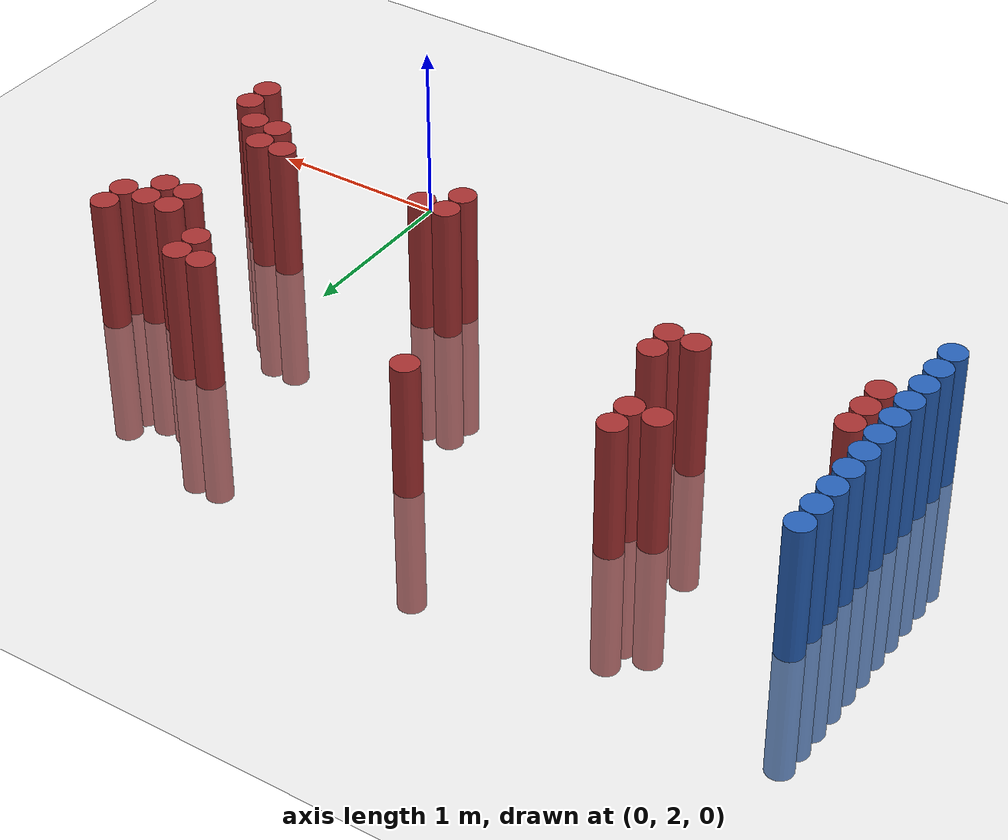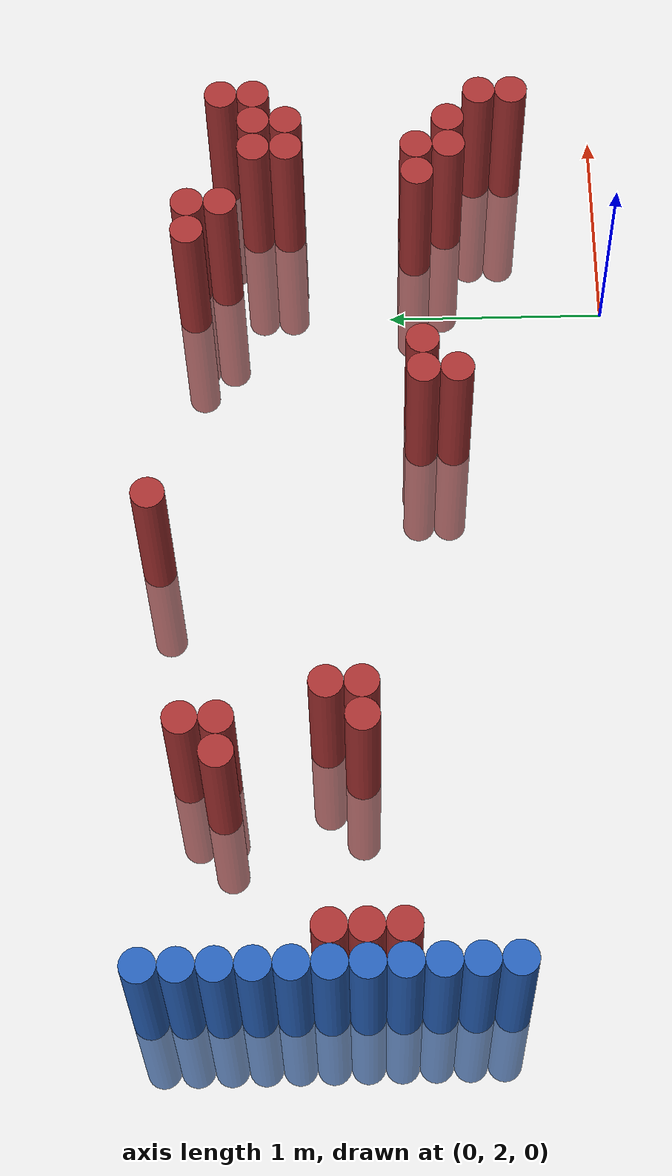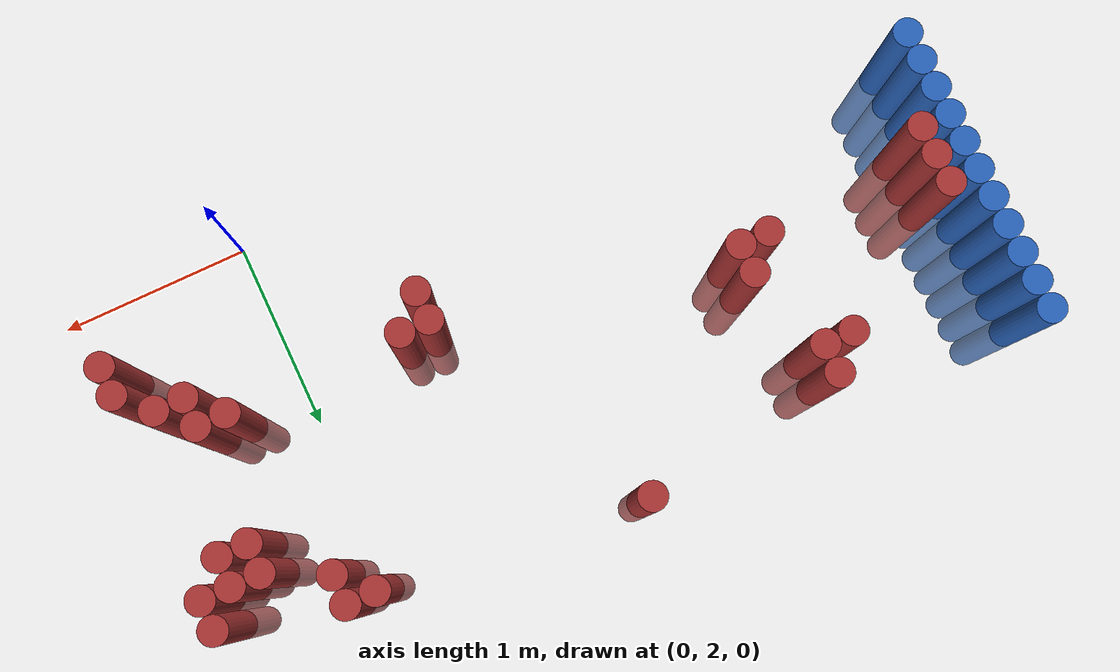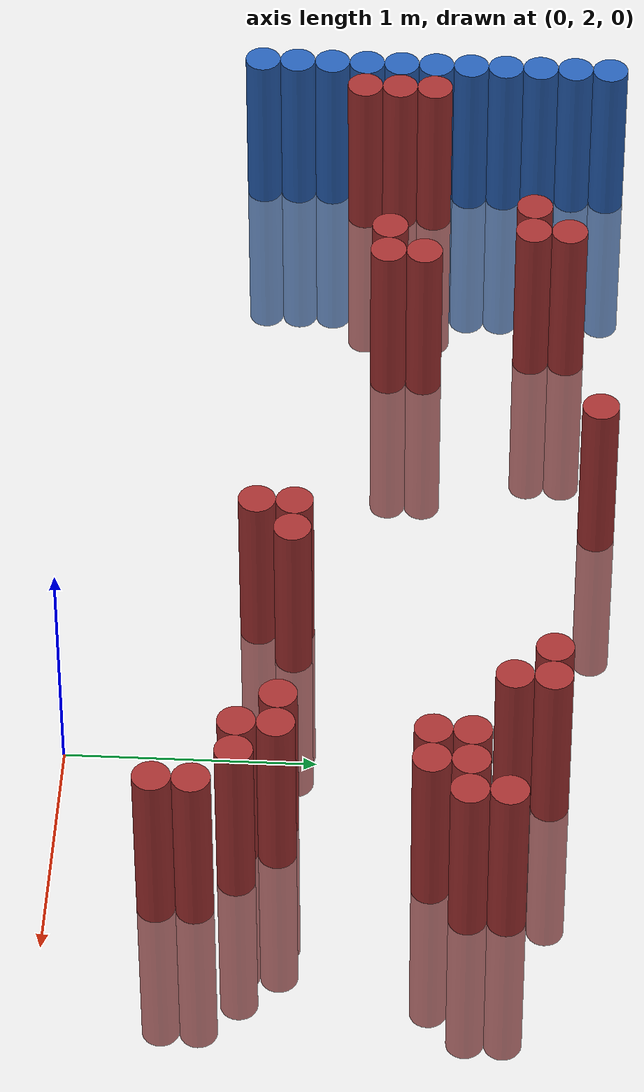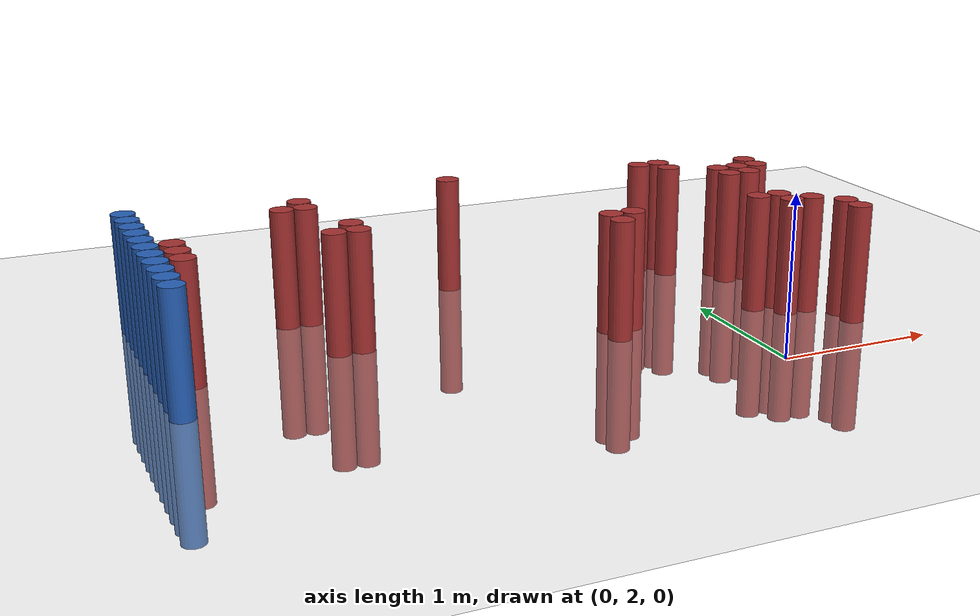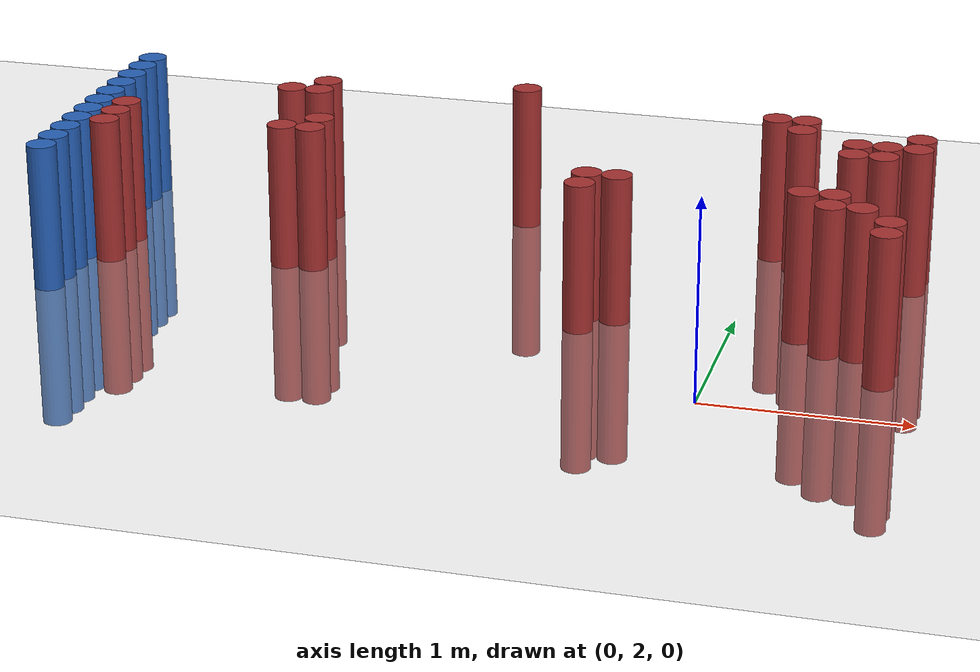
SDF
<sdf version="1.6">
 <world name="default">
  <model name="ground_plane">
   <static>1</static>
   <link name="link">
    <collision name="collision">
     <geometry><plane><normal>0 0 1</normal><size>100 100</size></plane></geometry>
     <surface><friction><ode><mu>100</mu><mu2>50</mu2></ode></friction></surface>
    </collision>
    <visual name="visual">
     <cast_shadows>0</cast_shadows>
     <geometry><plane><normal>0 0 1</normal><size>100 100</size></plane></geometry>
     <material>
      <script><uri>file://media/materials/scripts/gazebo.material</uri><name>Gazebo/Grey</name></script>
     </material>
    </visual>
   </link>
  </model>
  <model name="unit_cylinder_149">
   <static>1</static>
   <pose>-3.425000 2.575000 0.000000 0.000000 0.000000 0.000000</pose>
   <link name="link">
    <inertial>
     <mass>1</mass>
     <inertia><ixx>0.145833</ixx><ixy>0</ixy><ixz>0</ixz><iyy>0.145833</iyy><iyz>0</iyz><izz>0.125</izz></inertia>
    </inertial>
    <collision name="collision">
     <geometry><cylinder><radius>0.075000</radius><length>1.5</length></cylinder></geometry>
    </collision>
    <visual name="visual">
     <geometry><cylinder><radius>0.075000</radius><length>1.5</length></cylinder></geometry>
     <material>
      <ambient>0.152000 0.379000 0.720000 1</ambient>
      <diffuse>0.152000 0.379000 0.720000 1</diffuse>
     </material>
     <material>
      <script><name>Gazebo/Grey</name><uri>file://media/materials/scripts/gazebo.material</uri></script>
     </material>
    </visual>
   </link>
  </model>
  <model name="unit_cylinder_151">
   <static>1</static>
   <pose>-3.425000 2.725000 0.000000 0.000000 0.000000 0.000000</pose>
   <link name="link">
    <inertial>
     <mass>1</mass>
     <inertia><ixx>0.145833</ixx><ixy>0</ixy><ixz>0</ixz><iyy>0.145833</iyy><iyz>0</iyz><izz>0.125</izz></inertia>
    </inertial>
    <collision name="collision">
     <geometry><cylinder><radius>0.075000</radius><length>1.5</length></cylinder></geometry>
    </collision>
    <visual name="visual">
     <geometry><cylinder><radius>0.075000</radius><length>1.5</length></cylinder></geometry>
     <material>
      <ambient>0.152000 0.379000 0.720000 1</ambient>
      <diffuse>0.152000 0.379000 0.720000 1</diffuse>
     </material>
     <material>
      <script><name>Gazebo/Grey</name><uri>file://media/materials/scripts/gazebo.material</uri></script>
     </material>
    </visual>
   </link>
  </model>
  <model name="unit_cylinder_153">
   <static>1</static>
   <pose>-3.425000 2.875000 0.000000 0.000000 0.000000 0.000000</pose>
   <link name="link">
    <inertial>
     <mass>1</mass>
     <inertia><ixx>0.145833</ixx><ixy>0</ixy><ixz>0</ixz><iyy>0.145833</iyy><iyz>0</iyz><izz>0.125</izz></inertia>
    </inertial>
    <collision name="collision">
     <geometry><cylinder><radius>0.075000</radius><length>1.5</length></cylinder></geometry>
    </collision>
    <visual name="visual">
     <geometry><cylinder><radius>0.075000</radius><length>1.5</length></cylinder></geometry>
     <material>
      <ambient>0.152000 0.379000 0.720000 1</ambient>
      <diffuse>0.152000 0.379000 0.720000 1</diffuse>
     </material>
     <material>
      <script><name>Gazebo/Grey</name><uri>file://media/materials/scripts/gazebo.material</uri></script>
     </material>
    </visual>
   </link>
  </model>
  <model name="unit_cylinder_155">
   <static>1</static>
   <pose>-3.425000 3.025000 0.000000 0.000000 0.000000 0.000000</pose>
   <link name="link">
    <inertial>
     <mass>1</mass>
     <inertia><ixx>0.145833</ixx><ixy>0</ixy><ixz>0</ixz><iyy>0.145833</iyy><iyz>0</iyz><izz>0.125</izz></inertia>
    </inertial>
    <collision name="collision">
     <geometry><cylinder><radius>0.075000</radius><length>1.5</length></cylinder></geometry>
    </collision>
    <visual name="visual">
     <geometry><cylinder><radius>0.075000</radius><length>1.5</length></cylinder></geometry>
     <material>
      <ambient>0.152000 0.379000 0.720000 1</ambient>
      <diffuse>0.152000 0.379000 0.720000 1</diffuse>
     </material>
     <material>
      <script><name>Gazebo/Grey</name><uri>file://media/materials/scripts/gazebo.material</uri></script>
     </material>
    </visual>
   </link>
  </model>
  <model name="unit_cylinder_157">
   <static>1</static>
   <pose>-3.425000 3.175000 0.000000 0.000000 0.000000 0.000000</pose>
   <link name="link">
    <inertial>
     <mass>1</mass>
     <inertia><ixx>0.145833</ixx><ixy>0</ixy><ixz>0</ixz><iyy>0.145833</iyy><iyz>0</iyz><izz>0.125</izz></inertia>
    </inertial>
    <collision name="collision">
     <geometry><cylinder><radius>0.075000</radius><length>1.5</length></cylinder></geometry>
    </collision>
    <visual name="visual">
     <geometry><cylinder><radius>0.075000</radius><length>1.5</length></cylinder></geometry>
     <material>
      <ambient>0.152000 0.379000 0.720000 1</ambient>
      <diffuse>0.152000 0.379000 0.720000 1</diffuse>
     </material>
     <material>
      <script><name>Gazebo/Grey</name><uri>file://media/materials/scripts/gazebo.material</uri></script>
     </material>
    </visual>
   </link>
  </model>
  <model name="unit_cylinder_159">
   <static>1</static>
   <pose>-3.425000 3.325000 0.000000 0.000000 0.000000 0.000000</pose>
   <link name="link">
    <inertial>
     <mass>1</mass>
     <inertia><ixx>0.145833</ixx><ixy>0</ixy><ixz>0</ixz><iyy>0.145833</iyy><iyz>0</iyz><izz>0.125</izz></inertia>
    </inertial>
    <collision name="collision">
     <geometry><cylinder><radius>0.075000</radius><length>1.5</length></cylinder></geometry>
    </collision>
    <visual name="visual">
     <geometry><cylinder><radius>0.075000</radius><length>1.5</length></cylinder></geometry>
     <material>
      <ambient>0.152000 0.379000 0.720000 1</ambient>
      <diffuse>0.152000 0.379000 0.720000 1</diffuse>
     </material>
     <material>
      <script><name>Gazebo/Grey</name><uri>file://media/materials/scripts/gazebo.material</uri></script>
     </material>
    </visual>
   </link>
  </model>
  <model name="unit_cylinder_161">
   <static>1</static>
   <pose>-3.425000 3.475000 0.000000 0.000000 0.000000 0.000000</pose>
   <link name="link">
    <inertial>
     <mass>1</mass>
     <inertia><ixx>0.145833</ixx><ixy>0</ixy><ixz>0</ixz><iyy>0.145833</iyy><iyz>0</iyz><izz>0.125</izz></inertia>
    </inertial>
    <collision name="collision">
     <geometry><cylinder><radius>0.075000</radius><length>1.5</length></cylinder></geometry>
    </collision>
    <visual name="visual">
     <geometry><cylinder><radius>0.075000</radius><length>1.5</length></cylinder></geometry>
     <material>
      <ambient>0.152000 0.379000 0.720000 1</ambient>
      <diffuse>0.152000 0.379000 0.720000 1</diffuse>
     </material>
     <material>
      <script><name>Gazebo/Grey</name><uri>file://media/materials/scripts/gazebo.material</uri></script>
     </material>
    </visual>
   </link>
  </model>
  <model name="unit_cylinder_163">
   <static>1</static>
   <pose>-3.425000 3.625000 0.000000 0.000000 0.000000 0.000000</pose>
   <link name="link">
    <inertial>
     <mass>1</mass>
     <inertia><ixx>0.145833</ixx><ixy>0</ixy><ixz>0</ixz><iyy>0.145833</iyy><iyz>0</iyz><izz>0.125</izz></inertia>
    </inertial>
    <collision name="collision">
     <geometry><cylinder><radius>0.075000</radius><length>1.5</length></cylinder></geometry>
    </collision>
    <visual name="visual">
     <geometry><cylinder><radius>0.075000</radius><length>1.5</length></cylinder></geometry>
     <material>
      <ambient>0.152000 0.379000 0.720000 1</ambient>
      <diffuse>0.152000 0.379000 0.720000 1</diffuse>
     </material>
     <material>
      <script><name>Gazebo/Grey</name><uri>file://media/materials/scripts/gazebo.material</uri></script>
     </material>
    </visual>
   </link>
  </model>
  <model name="unit_cylinder_165">
   <static>1</static>
   <pose>-3.425000 3.775000 0.000000 0.000000 0.000000 0.000000</pose>
   <link name="link">
    <inertial>
     <mass>1</mass>
     <inertia><ixx>0.145833</ixx><ixy>0</ixy><ixz>0</ixz><iyy>0.145833</iyy><iyz>0</iyz><izz>0.125</izz></inertia>
    </inertial>
    <collision name="collision">
     <geometry><cylinder><radius>0.075000</radius><length>1.5</length></cylinder></geometry>
    </collision>
    <visual name="visual">
     <geometry><cylinder><radius>0.075000</radius><length>1.5</length></cylinder></geometry>
     <material>
      <ambient>0.152000 0.379000 0.720000 1</ambient>
      <diffuse>0.152000 0.379000 0.720000 1</diffuse>
     </material>
     <material>
      <script><name>Gazebo/Grey</name><uri>file://media/materials/scripts/gazebo.material</uri></script>
     </material>
    </visual>
   </link>
  </model>
  <model name="unit_cylinder_167">
   <static>1</static>
   <pose>-3.425000 3.925000 0.000000 0.000000 0.000000 0.000000</pose>
   <link name="link">
    <inertial>
     <mass>1</mass>
     <inertia><ixx>0.145833</ixx><ixy>0</ixy><ixz>0</ixz><iyy>0.145833</iyy><iyz>0</iyz><izz>0.125</izz></inertia>
    </inertial>
    <collision name="collision">
     <geometry><cylinder><radius>0.075000</radius><length>1.5</length></cylinder></geometry>
    </collision>
    <visual name="visual">
     <geometry><cylinder><radius>0.075000</radius><length>1.5</length></cylinder></geometry>
     <material>
      <ambient>0.152000 0.379000 0.720000 1</ambient>
      <diffuse>0.152000 0.379000 0.720000 1</diffuse>
     </material>
     <material>
      <script><name>Gazebo/Grey</name><uri>file://media/materials/scripts/gazebo.material</uri></script>
     </material>
    </visual>
   </link>
  </model>
  <model name="unit_cylinder_169">
   <static>1</static>
   <pose>-3.425000 4.075000 0.000000 0.000000 0.000000 0.000000</pose>
   <link name="link">
    <inertial>
     <mass>1</mass>
     <inertia><ixx>0.145833</ixx><ixy>0</ixy><ixz>0</ixz><iyy>0.145833</iyy><iyz>0</iyz><izz>0.125</izz></inertia>
    </inertial>
    <collision name="collision">
     <geometry><cylinder><radius>0.075000</radius><length>1.5</length></cylinder></geometry>
    </collision>
    <visual name="visual">
     <geometry><cylinder><radius>0.075000</radius><length>1.5</length></cylinder></geometry>
     <material>
      <ambient>0.152000 0.379000 0.720000 1</ambient>
      <diffuse>0.152000 0.379000 0.720000 1</diffuse>
     </material>
     <material>
      <script><name>Gazebo/Grey</name><uri>file://media/materials/scripts/gazebo.material</uri></script>
     </material>
    </visual>
   </link>
  </model>
  <model name="unit_cylinder_238">
   <static>1</static>
   <pose>-3.425000 2.575000 0.000000 0.000000 0.000000 0.000000</pose>
   <link name="link">
    <inertial>
     <mass>1</mass>
     <inertia><ixx>0.145833</ixx><ixy>0</ixy><ixz>0</ixz><iyy>0.145833</iyy><iyz>0</iyz><izz>0.125</izz></inertia>
    </inertial>
    <collision name="collision">
     <geometry><cylinder><radius>0.075000</radius><length>1.5</length></cylinder></geometry>
    </collision>
    <visual name="visual">
     <geometry><cylinder><radius>0.075000</radius><length>1.5</length></cylinder></geometry>
     <material>
      <ambient>0.152000 0.379000 0.720000 1</ambient>
      <diffuse>0.152000 0.379000 0.720000 1</diffuse>
     </material>
     <material>
      <script><name>Gazebo/Grey</name><uri>file://media/materials/scripts/gazebo.material</uri></script>
     </material>
    </visual>
   </link>
  </model>
  <model name="unit_cylinder_239">
   <static>1</static>
   <pose>-3.425000 2.725000 0.000000 0.000000 0.000000 0.000000</pose>
   <link name="link">
    <inertial>
     <mass>1</mass>
     <inertia><ixx>0.145833</ixx><ixy>0</ixy><ixz>0</ixz><iyy>0.145833</iyy><iyz>0</iyz><izz>0.125</izz></inertia>
    </inertial>
    <collision name="collision">
     <geometry><cylinder><radius>0.075000</radius><length>1.5</length></cylinder></geometry>
    </collision>
    <visual name="visual">
     <geometry><cylinder><radius>0.075000</radius><length>1.5</length></cylinder></geometry>
     <material>
      <ambient>0.152000 0.379000 0.720000 1</ambient>
      <diffuse>0.152000 0.379000 0.720000 1</diffuse>
     </material>
     <material>
      <script><name>Gazebo/Grey</name><uri>file://media/materials/scripts/gazebo.material</uri></script>
     </material>
    </visual>
   </link>
  </model>
  <model name="unit_cylinder_240">
   <static>1</static>
   <pose>-3.425000 2.875000 0.000000 0.000000 0.000000 0.000000</pose>
   <link name="link">
    <inertial>
     <mass>1</mass>
     <inertia><ixx>0.145833</ixx><ixy>0</ixy><ixz>0</ixz><iyy>0.145833</iyy><iyz>0</iyz><izz>0.125</izz></inertia>
    </inertial>
    <collision name="collision">
     <geometry><cylinder><radius>0.075000</radius><length>1.5</length></cylinder></geometry>
    </collision>
    <visual name="visual">
     <geometry><cylinder><radius>0.075000</radius><length>1.5</length></cylinder></geometry>
     <material>
      <ambient>0.152000 0.379000 0.720000 1</ambient>
      <diffuse>0.152000 0.379000 0.720000 1</diffuse>
     </material>
     <material>
      <script><name>Gazebo/Grey</name><uri>file://media/materials/scripts/gazebo.material</uri></script>
     </material>
    </visual>
   </link>
  </model>
  <model name="unit_cylinder_241">
   <static>1</static>
   <pose>-3.425000 3.025000 0.000000 0.000000 0.000000 0.000000</pose>
   <link name="link">
    <inertial>
     <mass>1</mass>
     <inertia><ixx>0.145833</ixx><ixy>0</ixy><ixz>0</ixz><iyy>0.145833</iyy><iyz>0</iyz><izz>0.125</izz></inertia>
    </inertial>
    <collision name="collision">
     <geometry><cylinder><radius>0.075000</radius><length>1.5</length></cylinder></geometry>
    </collision>
    <visual name="visual">
     <geometry><cylinder><radius>0.075000</radius><length>1.5</length></cylinder></geometry>
     <material>
      <ambient>0.152000 0.379000 0.720000 1</ambient>
      <diffuse>0.152000 0.379000 0.720000 1</diffuse>
     </material>
     <material>
      <script><name>Gazebo/Grey</name><uri>file://media/materials/scripts/gazebo.material</uri></script>
     </material>
    </visual>
   </link>
  </model>
  <model name="unit_cylinder_242">
   <static>1</static>
   <pose>-3.425000 3.175000 0.000000 0.000000 0.000000 0.000000</pose>
   <link name="link">
    <inertial>
     <mass>1</mass>
     <inertia><ixx>0.145833</ixx><ixy>0</ixy><ixz>0</ixz><iyy>0.145833</iyy><iyz>0</iyz><izz>0.125</izz></inertia>
    </inertial>
    <collision name="collision">
     <geometry><cylinder><radius>0.075000</radius><length>1.5</length></cylinder></geometry>
    </collision>
    <visual name="visual">
     <geometry><cylinder><radius>0.075000</radius><length>1.5</length></cylinder></geometry>
     <material>
      <ambient>0.152000 0.379000 0.720000 1</ambient>
      <diffuse>0.152000 0.379000 0.720000 1</diffuse>
     </material>
     <material>
      <script><name>Gazebo/Grey</name><uri>file://media/materials/scripts/gazebo.material</uri></script>
     </material>
    </visual>
   </link>
  </model>
  <model name="unit_cylinder_243">
   <static>1</static>
   <pose>-3.425000 3.325000 0.000000 0.000000 0.000000 0.000000</pose>
   <link name="link">
    <inertial>
     <mass>1</mass>
     <inertia><ixx>0.145833</ixx><ixy>0</ixy><ixz>0</ixz><iyy>0.145833</iyy><iyz>0</iyz><izz>0.125</izz></inertia>
    </inertial>
    <collision name="collision">
     <geometry><cylinder><radius>0.075000</radius><length>1.5</length></cylinder></geometry>
    </collision>
    <visual name="visual">
     <geometry><cylinder><radius>0.075000</radius><length>1.5</length></cylinder></geometry>
     <material>
      <ambient>0.152000 0.379000 0.720000 1</ambient>
      <diffuse>0.152000 0.379000 0.720000 1</diffuse>
     </material>
     <material>
      <script><name>Gazebo/Grey</name><uri>file://media/materials/scripts/gazebo.material</uri></script>
     </material>
    </visual>
   </link>
  </model>
  <model name="unit_cylinder_244">
   <static>1</static>
   <pose>-3.425000 3.475000 0.000000 0.000000 0.000000 0.000000</pose>
   <link name="link">
    <inertial>
     <mass>1</mass>
     <inertia><ixx>0.145833</ixx><ixy>0</ixy><ixz>0</ixz><iyy>0.145833</iyy><iyz>0</iyz><izz>0.125</izz></inertia>
    </inertial>
    <collision name="collision">
     <geometry><cylinder><radius>0.075000</radius><length>1.5</length></cylinder></geometry>
    </collision>
    <visual name="visual">
     <geometry><cylinder><radius>0.075000</radius><length>1.5</length></cylinder></geometry>
     <material>
      <ambient>0.152000 0.379000 0.720000 1</ambient>
      <diffuse>0.152000 0.379000 0.720000 1</diffuse>
     </material>
     <material>
      <script><name>Gazebo/Grey</name><uri>file://media/materials/scripts/gazebo.material</uri></script>
     </material>
    </visual>
   </link>
  </model>
  <model name="unit_cylinder_245">
   <static>1</static>
   <pose>-3.425000 3.625000 0.000000 0.000000 0.000000 0.000000</pose>
   <link name="link">
    <inertial>
     <mass>1</mass>
     <inertia><ixx>0.145833</ixx><ixy>0</ixy><ixz>0</ixz><iyy>0.145833</iyy><iyz>0</iyz><izz>0.125</izz></inertia>
    </inertial>
    <collision name="collision">
     <geometry><cylinder><radius>0.075000</radius><length>1.5</length></cylinder></geometry>
    </collision>
    <visual name="visual">
     <geometry><cylinder><radius>0.075000</radius><length>1.5</length></cylinder></geometry>
     <material>
      <ambient>0.152000 0.379000 0.720000 1</ambient>
      <diffuse>0.152000 0.379000 0.720000 1</diffuse>
     </material>
     <material>
      <script><name>Gazebo/Grey</name><uri>file://media/materials/scripts/gazebo.material</uri></script>
     </material>
    </visual>
   </link>
  </model>
  <model name="unit_cylinder_246">
   <static>1</static>
   <pose>-3.425000 3.775000 0.000000 0.000000 0.000000 0.000000</pose>
   <link name="link">
    <inertial>
     <mass>1</mass>
     <inertia><ixx>0.145833</ixx><ixy>0</ixy><ixz>0</ixz><iyy>0.145833</iyy><iyz>0</iyz><izz>0.125</izz></inertia>
    </inertial>
    <collision name="collision">
     <geometry><cylinder><radius>0.075000</radius><length>1.5</length></cylinder></geometry>
    </collision>
    <visual name="visual">
     <geometry><cylinder><radius>0.075000</radius><length>1.5</length></cylinder></geometry>
     <material>
      <ambient>0.152000 0.379000 0.720000 1</ambient>
      <diffuse>0.152000 0.379000 0.720000 1</diffuse>
     </material>
     <material>
      <script><name>Gazebo/Grey</name><uri>file://media/materials/scripts/gazebo.material</uri></script>
     </material>
    </visual>
   </link>
  </model>
  <model name="unit_cylinder_247">
   <static>1</static>
   <pose>-3.425000 3.925000 0.000000 0.000000 0.000000 0.000000</pose>
   <link name="link">
    <inertial>
     <mass>1</mass>
     <inertia><ixx>0.145833</ixx><ixy>0</ixy><ixz>0</ixz><iyy>0.145833</iyy><iyz>0</iyz><izz>0.125</izz></inertia>
    </inertial>
    <collision name="collision">
     <geometry><cylinder><radius>0.075000</radius><length>1.5</length></cylinder></geometry>
    </collision>
    <visual name="visual">
     <geometry><cylinder><radius>0.075000</radius><length>1.5</length></cylinder></geometry>
     <material>
      <ambient>0.152000 0.379000 0.720000 1</ambient>
      <diffuse>0.152000 0.379000 0.720000 1</diffuse>
     </material>
     <material>
      <script><name>Gazebo/Grey</name><uri>file://media/materials/scripts/gazebo.material</uri></script>
     </material>
    </visual>
   </link>
  </model>
  <model name="unit_cylinder_248">
   <static>1</static>
   <pose>-3.425000 4.075000 0.000000 0.000000 0.000000 0.000000</pose>
   <link name="link">
    <inertial>
     <mass>1</mass>
     <inertia><ixx>0.145833</ixx><ixy>0</ixy><ixz>0</ixz><iyy>0.145833</iyy><iyz>0</iyz><izz>0.125</izz></inertia>
    </inertial>
    <collision name="collision">
     <geometry><cylinder><radius>0.075000</radius><length>1.5</length></cylinder></geometry>
    </collision>
    <visual name="visual">
     <geometry><cylinder><radius>0.075000</radius><length>1.5</length></cylinder></geometry>
     <material>
      <ambient>0.152000 0.379000 0.720000 1</ambient>
      <diffuse>0.152000 0.379000 0.720000 1</diffuse>
     </material>
     <material>
      <script><name>Gazebo/Grey</name><uri>file://media/materials/scripts/gazebo.material</uri></script>
     </material>
    </visual>
   </link>
  </model>
  <model name="unit_cylinder_271">
   <static>1</static>
   <pose>-3.275000 3.025000 0.000000 0.000000 0.000000 0.000000</pose>
   <link name="link">
    <inertial>
     <mass>1</mass>
     <inertia><ixx>0.145833</ixx><ixy>0</ixy><ixz>0</ixz><iyy>0.145833</iyy><iyz>0</iyz><izz>0.125</izz></inertia>
    </inertial>
    <collision name="collision">
     <geometry><cylinder><radius>0.075000</radius><length>1.5</length></cylinder></geometry>
    </collision>
    <visual name="visual">
     <geometry><cylinder><radius>0.075000</radius><length>1.5</length></cylinder></geometry>
     <material>
      <ambient>0.648000 0.192000 0.192000 1</ambient>
      <diffuse>0.648000 0.192000 0.192000 1</diffuse>
     </material>
     <material>
      <script><name>Gazebo/Grey</name><uri>file://media/materials/scripts/gazebo.material</uri></script>
     </material>
    </visual>
   </link>
  </model>
  <model name="unit_cylinder_272">
   <static>1</static>
   <pose>-3.275000 3.175000 0.000000 0.000000 0.000000 0.000000</pose>
   <link name="link">
    <inertial>
     <mass>1</mass>
     <inertia><ixx>0.145833</ixx><ixy>0</ixy><ixz>0</ixz><iyy>0.145833</iyy><iyz>0</iyz><izz>0.125</izz></inertia>
    </inertial>
    <collision name="collision">
     <geometry><cylinder><radius>0.075000</radius><length>1.5</length></cylinder></geometry>
    </collision>
    <visual name="visual">
     <geometry><cylinder><radius>0.075000</radius><length>1.5</length></cylinder></geometry>
     <material>
      <ambient>0.648000 0.192000 0.192000 1</ambient>
      <diffuse>0.648000 0.192000 0.192000 1</diffuse>
     </material>
     <material>
      <script><name>Gazebo/Grey</name><uri>file://media/materials/scripts/gazebo.material</uri></script>
     </material>
    </visual>
   </link>
  </model>
  <model name="unit_cylinder_273">
   <static>1</static>
   <pose>-3.275000 3.325000 0.000000 0.000000 0.000000 0.000000</pose>
   <link name="link">
    <inertial>
     <mass>1</mass>
     <inertia><ixx>0.145833</ixx><ixy>0</ixy><ixz>0</ixz><iyy>0.145833</iyy><iyz>0</iyz><izz>0.125</izz></inertia>
    </inertial>
    <collision name="collision">
     <geometry><cylinder><radius>0.075000</radius><length>1.5</length></cylinder></geometry>
    </collision>
    <visual name="visual">
     <geometry><cylinder><radius>0.075000</radius><length>1.5</length></cylinder></geometry>
     <material>
      <ambient>0.648000 0.192000 0.192000 1</ambient>
      <diffuse>0.648000 0.192000 0.192000 1</diffuse>
     </material>
     <material>
      <script><name>Gazebo/Grey</name><uri>file://media/materials/scripts/gazebo.material</uri></script>
     </material>
    </visual>
   </link>
  </model>
  <model name="unit_cylinder_293">
   <static>1</static>
   <pose>-2.525000 3.775000 0.000000 0.000000 0.000000 0.000000</pose>
   <link name="link">
    <inertial>
     <mass>1</mass>
     <inertia><ixx>0.145833</ixx><ixy>0</ixy><ixz>0</ixz><iyy>0.145833</iyy><iyz>0</iyz><izz>0.125</izz></inertia>
    </inertial>
    <collision name="collision">
     <geometry><cylinder><radius>0.075000</radius><length>1.5</length></cylinder></geometry>
    </collision>
    <visual name="visual">
     <geometry><cylinder><radius>0.075000</radius><length>1.5</length></cylinder></geometry>
     <material>
      <ambient>0.648000 0.192000 0.192000 1</ambient>
      <diffuse>0.648000 0.192000 0.192000 1</diffuse>
     </material>
     <material>
      <script><name>Gazebo/Grey</name><uri>file://media/materials/scripts/gazebo.material</uri></script>
     </material>
    </visual>
   </link>
  </model>
  <model name="unit_cylinder_297">
   <static>1</static>
   <pose>-2.375000 3.175000 0.000000 0.000000 0.000000 0.000000</pose>
   <link name="link">
    <inertial>
     <mass>1</mass>
     <inertia><ixx>0.145833</ixx><ixy>0</ixy><ixz>0</ixz><iyy>0.145833</iyy><iyz>0</iyz><izz>0.125</izz></inertia>
    </inertial>
    <collision name="collision">
     <geometry><cylinder><radius>0.075000</radius><length>1.5</length></cylinder></geometry>
    </collision>
    <visual name="visual">
     <geometry><cylinder><radius>0.075000</radius><length>1.5</length></cylinder></geometry>
     <material>
      <ambient>0.648000 0.192000 0.192000 1</ambient>
      <diffuse>0.648000 0.192000 0.192000 1</diffuse>
     </material>
     <material>
      <script><name>Gazebo/Grey</name><uri>file://media/materials/scripts/gazebo.material</uri></script>
     </material>
    </visual>
   </link>
  </model>
  <model name="unit_cylinder_298">
   <static>1</static>
   <pose>-2.375000 3.775000 0.000000 0.000000 0.000000 0.000000</pose>
   <link name="link">
    <inertial>
     <mass>1</mass>
     <inertia><ixx>0.145833</ixx><ixy>0</ixy><ixz>0</ixz><iyy>0.145833</iyy><iyz>0</iyz><izz>0.125</izz></inertia>
    </inertial>
    <collision name="collision">
     <geometry><cylinder><radius>0.075000</radius><length>1.5</length></cylinder></geometry>
    </collision>
    <visual name="visual">
     <geometry><cylinder><radius>0.075000</radius><length>1.5</length></cylinder></geometry>
     <material>
      <ambient>0.648000 0.192000 0.192000 1</ambient>
      <diffuse>0.648000 0.192000 0.192000 1</diffuse>
     </material>
     <material>
      <script><name>Gazebo/Grey</name><uri>file://media/materials/scripts/gazebo.material</uri></script>
     </material>
    </visual>
   </link>
  </model>
  <model name="unit_cylinder_299">
   <static>1</static>
   <pose>-2.375000 3.925000 0.000000 0.000000 0.000000 0.000000</pose>
   <link name="link">
    <inertial>
     <mass>1</mass>
     <inertia><ixx>0.145833</ixx><ixy>0</ixy><ixz>0</ixz><iyy>0.145833</iyy><iyz>0</iyz><izz>0.125</izz></inertia>
    </inertial>
    <collision name="collision">
     <geometry><cylinder><radius>0.075000</radius><length>1.5</length></cylinder></geometry>
    </collision>
    <visual name="visual">
     <geometry><cylinder><radius>0.075000</radius><length>1.5</length></cylinder></geometry>
     <material>
      <ambient>0.648000 0.192000 0.192000 1</ambient>
      <diffuse>0.648000 0.192000 0.192000 1</diffuse>
     </material>
     <material>
      <script><name>Gazebo/Grey</name><uri>file://media/materials/scripts/gazebo.material</uri></script>
     </material>
    </visual>
   </link>
  </model>
  <model name="unit_cylinder_302">
   <static>1</static>
   <pose>-2.225000 3.175000 0.000000 0.000000 0.000000 0.000000</pose>
   <link name="link">
    <inertial>
     <mass>1</mass>
     <inertia><ixx>0.145833</ixx><ixy>0</ixy><ixz>0</ixz><iyy>0.145833</iyy><iyz>0</iyz><izz>0.125</izz></inertia>
    </inertial>
    <collision name="collision">
     <geometry><cylinder><radius>0.075000</radius><length>1.5</length></cylinder></geometry>
    </collision>
    <visual name="visual">
     <geometry><cylinder><radius>0.075000</radius><length>1.5</length></cylinder></geometry>
     <material>
      <ambient>0.648000 0.192000 0.192000 1</ambient>
      <diffuse>0.648000 0.192000 0.192000 1</diffuse>
     </material>
     <material>
      <script><name>Gazebo/Grey</name><uri>file://media/materials/scripts/gazebo.material</uri></script>
     </material>
    </visual>
   </link>
  </model>
  <model name="unit_cylinder_303">
   <static>1</static>
   <pose>-2.225000 3.325000 0.000000 0.000000 0.000000 0.000000</pose>
   <link name="link">
    <inertial>
     <mass>1</mass>
     <inertia><ixx>0.145833</ixx><ixy>0</ixy><ixz>0</ixz><iyy>0.145833</iyy><iyz>0</iyz><izz>0.125</izz></inertia>
    </inertial>
    <collision name="collision">
     <geometry><cylinder><radius>0.075000</radius><length>1.5</length></cylinder></geometry>
    </collision>
    <visual name="visual">
     <geometry><cylinder><radius>0.075000</radius><length>1.5</length></cylinder></geometry>
     <material>
      <ambient>0.648000 0.192000 0.192000 1</ambient>
      <diffuse>0.648000 0.192000 0.192000 1</diffuse>
     </material>
     <material>
      <script><name>Gazebo/Grey</name><uri>file://media/materials/scripts/gazebo.material</uri></script>
     </material>
    </visual>
   </link>
  </model>
  <model name="unit_cylinder_311">
   <static>1</static>
   <pose>-1.325000 4.075000 0.000000 0.000000 0.000000 0.000000</pose>
   <link name="link">
    <inertial>
     <mass>1</mass>
     <inertia><ixx>0.145833</ixx><ixy>0</ixy><ixz>0</ixz><iyy>0.145833</iyy><iyz>0</iyz><izz>0.125</izz></inertia>
    </inertial>
    <collision name="collision">
     <geometry><cylinder><radius>0.075000</radius><length>1.5</length></cylinder></geometry>
    </collision>
    <visual name="visual">
     <geometry><cylinder><radius>0.075000</radius><length>1.5</length></cylinder></geometry>
     <material>
      <ambient>0.648000 0.192000 0.192000 1</ambient>
      <diffuse>0.648000 0.192000 0.192000 1</diffuse>
     </material>
     <material>
      <script><name>Gazebo/Grey</name><uri>file://media/materials/scripts/gazebo.material</uri></script>
     </material>
    </visual>
   </link>
  </model>
  <model name="unit_cylinder_320">
   <static>1</static>
   <pose>-0.725000 2.725000 0.000000 0.000000 0.000000 0.000000</pose>
   <link name="link">
    <inertial>
     <mass>1</mass>
     <inertia><ixx>0.145833</ixx><ixy>0</ixy><ixz>0</ixz><iyy>0.145833</iyy><iyz>0</iyz><izz>0.125</izz></inertia>
    </inertial>
    <collision name="collision">
     <geometry><cylinder><radius>0.075000</radius><length>1.5</length></cylinder></geometry>
    </collision>
    <visual name="visual">
     <geometry><cylinder><radius>0.075000</radius><length>1.5</length></cylinder></geometry>
     <material>
      <ambient>0.648000 0.192000 0.192000 1</ambient>
      <diffuse>0.648000 0.192000 0.192000 1</diffuse>
     </material>
     <material>
      <script><name>Gazebo/Grey</name><uri>file://media/materials/scripts/gazebo.material</uri></script>
     </material>
    </visual>
   </link>
  </model>
  <model name="unit_cylinder_321">
   <static>1</static>
   <pose>-0.725000 2.875000 0.000000 0.000000 0.000000 0.000000</pose>
   <link name="link">
    <inertial>
     <mass>1</mass>
     <inertia><ixx>0.145833</ixx><ixy>0</ixy><ixz>0</ixz><iyy>0.145833</iyy><iyz>0</iyz><izz>0.125</izz></inertia>
    </inertial>
    <collision name="collision">
     <geometry><cylinder><radius>0.075000</radius><length>1.5</length></cylinder></geometry>
    </collision>
    <visual name="visual">
     <geometry><cylinder><radius>0.075000</radius><length>1.5</length></cylinder></geometry>
     <material>
      <ambient>0.648000 0.192000 0.192000 1</ambient>
      <diffuse>0.648000 0.192000 0.192000 1</diffuse>
     </material>
     <material>
      <script><name>Gazebo/Grey</name><uri>file://media/materials/scripts/gazebo.material</uri></script>
     </material>
    </visual>
   </link>
  </model>
  <model name="unit_cylinder_322">
   <static>1</static>
   <pose>-0.575000 2.875000 0.000000 0.000000 0.000000 0.000000</pose>
   <link name="link">
    <inertial>
     <mass>1</mass>
     <inertia><ixx>0.145833</ixx><ixy>0</ixy><ixz>0</ixz><iyy>0.145833</iyy><iyz>0</iyz><izz>0.125</izz></inertia>
    </inertial>
    <collision name="collision">
     <geometry><cylinder><radius>0.075000</radius><length>1.5</length></cylinder></geometry>
    </collision>
    <visual name="visual">
     <geometry><cylinder><radius>0.075000</radius><length>1.5</length></cylinder></geometry>
     <material>
      <ambient>0.648000 0.192000 0.192000 1</ambient>
      <diffuse>0.648000 0.192000 0.192000 1</diffuse>
     </material>
     <material>
      <script><name>Gazebo/Grey</name><uri>file://media/materials/scripts/gazebo.material</uri></script>
     </material>
    </visual>
   </link>
  </model>
  <model name="unit_cylinder_340">
   <static>1</static>
   <pose>0.025000 3.925000 0.000000 0.000000 0.000000 0.000000</pose>
   <link name="link">
    <inertial>
     <mass>1</mass>
     <inertia><ixx>0.145833</ixx><ixy>0</ixy><ixz>0</ixz><iyy>0.145833</iyy><iyz>0</iyz><izz>0.125</izz></inertia>
    </inertial>
    <collision name="collision">
     <geometry><cylinder><radius>0.075000</radius><length>1.5</length></cylinder></geometry>
    </collision>
    <visual name="visual">
     <geometry><cylinder><radius>0.075000</radius><length>1.5</length></cylinder></geometry>
     <material>
      <ambient>0.648000 0.192000 0.192000 1</ambient>
      <diffuse>0.648000 0.192000 0.192000 1</diffuse>
     </material>
     <material>
      <script><name>Gazebo/Grey</name><uri>file://media/materials/scripts/gazebo.material</uri></script>
     </material>
    </visual>
   </link>
  </model>
  <model name="unit_cylinder_351">
   <static>1</static>
   <pose>0.175000 3.775000 0.000000 0.000000 0.000000 0.000000</pose>
   <link name="link">
    <inertial>
     <mass>1</mass>
     <inertia><ixx>0.145833</ixx><ixy>0</ixy><ixz>0</ixz><iyy>0.145833</iyy><iyz>0</iyz><izz>0.125</izz></inertia>
    </inertial>
    <collision name="collision">
     <geometry><cylinder><radius>0.075000</radius><length>1.5</length></cylinder></geometry>
    </collision>
    <visual name="visual">
     <geometry><cylinder><radius>0.075000</radius><length>1.5</length></cylinder></geometry>
     <material>
      <ambient>0.648000 0.192000 0.192000 1</ambient>
      <diffuse>0.648000 0.192000 0.192000 1</diffuse>
     </material>
     <material>
      <script><name>Gazebo/Grey</name><uri>file://media/materials/scripts/gazebo.material</uri></script>
     </material>
    </visual>
   </link>
  </model>
  <model name="unit_cylinder_352">
   <static>1</static>
   <pose>0.175000 3.925000 0.000000 0.000000 0.000000 0.000000</pose>
   <link name="link">
    <inertial>
     <mass>1</mass>
     <inertia><ixx>0.145833</ixx><ixy>0</ixy><ixz>0</ixz><iyy>0.145833</iyy><iyz>0</iyz><izz>0.125</izz></inertia>
    </inertial>
    <collision name="collision">
     <geometry><cylinder><radius>0.075000</radius><length>1.5</length></cylinder></geometry>
    </collision>
    <visual name="visual">
     <geometry><cylinder><radius>0.075000</radius><length>1.5</length></cylinder></geometry>
     <material>
      <ambient>0.648000 0.192000 0.192000 1</ambient>
      <diffuse>0.648000 0.192000 0.192000 1</diffuse>
     </material>
     <material>
      <script><name>Gazebo/Grey</name><uri>file://media/materials/scripts/gazebo.material</uri></script>
     </material>
    </visual>
   </link>
  </model>
  <model name="unit_cylinder_358">
   <static>1</static>
   <pose>0.325000 2.875000 0.000000 0.000000 0.000000 0.000000</pose>
   <link name="link">
    <inertial>
     <mass>1</mass>
     <inertia><ixx>0.145833</ixx><ixy>0</ixy><ixz>0</ixz><iyy>0.145833</iyy><iyz>0</iyz><izz>0.125</izz></inertia>
    </inertial>
    <collision name="collision">
     <geometry><cylinder><radius>0.075000</radius><length>1.5</length></cylinder></geometry>
    </collision>
    <visual name="visual">
     <geometry><cylinder><radius>0.075000</radius><length>1.5</length></cylinder></geometry>
     <material>
      <ambient>0.648000 0.192000 0.192000 1</ambient>
      <diffuse>0.648000 0.192000 0.192000 1</diffuse>
     </material>
     <material>
      <script><name>Gazebo/Grey</name><uri>file://media/materials/scripts/gazebo.material</uri></script>
     </material>
    </visual>
   </link>
  </model>
  <model name="unit_cylinder_365">
   <static>1</static>
   <pose>0.475000 2.725000 0.000000 0.000000 0.000000 0.000000</pose>
   <link name="link">
    <inertial>
     <mass>1</mass>
     <inertia><ixx>0.145833</ixx><ixy>0</ixy><ixz>0</ixz><iyy>0.145833</iyy><iyz>0</iyz><izz>0.125</izz></inertia>
    </inertial>
    <collision name="collision">
     <geometry><cylinder><radius>0.075000</radius><length>1.5</length></cylinder></geometry>
    </collision>
    <visual name="visual">
     <geometry><cylinder><radius>0.075000</radius><length>1.5</length></cylinder></geometry>
     <material>
      <ambient>0.648000 0.192000 0.192000 1</ambient>
      <diffuse>0.648000 0.192000 0.192000 1</diffuse>
     </material>
     <material>
      <script><name>Gazebo/Grey</name><uri>file://media/materials/scripts/gazebo.material</uri></script>
     </material>
    </visual>
   </link>
  </model>
  <model name="unit_cylinder_366">
   <static>1</static>
   <pose>0.475000 2.875000 0.000000 0.000000 0.000000 0.000000</pose>
   <link name="link">
    <inertial>
     <mass>1</mass>
     <inertia><ixx>0.145833</ixx><ixy>0</ixy><ixz>0</ixz><iyy>0.145833</iyy><iyz>0</iyz><izz>0.125</izz></inertia>
    </inertial>
    <collision name="collision">
     <geometry><cylinder><radius>0.075000</radius><length>1.5</length></cylinder></geometry>
    </collision>
    <visual name="visual">
     <geometry><cylinder><radius>0.075000</radius><length>1.5</length></cylinder></geometry>
     <material>
      <ambient>0.648000 0.192000 0.192000 1</ambient>
      <diffuse>0.648000 0.192000 0.192000 1</diffuse>
     </material>
     <material>
      <script><name>Gazebo/Grey</name><uri>file://media/materials/scripts/gazebo.material</uri></script>
     </material>
    </visual>
   </link>
  </model>
  <model name="unit_cylinder_367">
   <static>1</static>
   <pose>0.475000 3.475000 0.000000 0.000000 0.000000 0.000000</pose>
   <link name="link">
    <inertial>
     <mass>1</mass>
     <inertia><ixx>0.145833</ixx><ixy>0</ixy><ixz>0</ixz><iyy>0.145833</iyy><iyz>0</iyz><izz>0.125</izz></inertia>
    </inertial>
    <collision name="collision">
     <geometry><cylinder><radius>0.075000</radius><length>1.5</length></cylinder></geometry>
    </collision>
    <visual name="visual">
     <geometry><cylinder><radius>0.075000</radius><length>1.5</length></cylinder></geometry>
     <material>
      <ambient>0.648000 0.192000 0.192000 1</ambient>
      <diffuse>0.648000 0.192000 0.192000 1</diffuse>
     </material>
     <material>
      <script><name>Gazebo/Grey</name><uri>file://media/materials/scripts/gazebo.material</uri></script>
     </material>
    </visual>
   </link>
  </model>
  <model name="unit_cylinder_368">
   <static>1</static>
   <pose>0.475000 3.625000 0.000000 0.000000 0.000000 0.000000</pose>
   <link name="link">
    <inertial>
     <mass>1</mass>
     <inertia><ixx>0.145833</ixx><ixy>0</ixy><ixz>0</ixz><iyy>0.145833</iyy><iyz>0</iyz><izz>0.125</izz></inertia>
    </inertial>
    <collision name="collision">
     <geometry><cylinder><radius>0.075000</radius><length>1.5</length></cylinder></geometry>
    </collision>
    <visual name="visual">
     <geometry><cylinder><radius>0.075000</radius><length>1.5</length></cylinder></geometry>
     <material>
      <ambient>0.648000 0.192000 0.192000 1</ambient>
      <diffuse>0.648000 0.192000 0.192000 1</diffuse>
     </material>
     <material>
      <script><name>Gazebo/Grey</name><uri>file://media/materials/scripts/gazebo.material</uri></script>
     </material>
    </visual>
   </link>
  </model>
  <model name="unit_cylinder_372">
   <static>1</static>
   <pose>0.625000 2.725000 0.000000 0.000000 0.000000 0.000000</pose>
   <link name="link">
    <inertial>
     <mass>1</mass>
     <inertia><ixx>0.145833</ixx><ixy>0</ixy><ixz>0</ixz><iyy>0.145833</iyy><iyz>0</iyz><izz>0.125</izz></inertia>
    </inertial>
    <collision name="collision">
     <geometry><cylinder><radius>0.075000</radius><length>1.5</length></cylinder></geometry>
    </collision>
    <visual name="visual">
     <geometry><cylinder><radius>0.075000</radius><length>1.5</length></cylinder></geometry>
     <material>
      <ambient>0.648000 0.192000 0.192000 1</ambient>
      <diffuse>0.648000 0.192000 0.192000 1</diffuse>
     </material>
     <material>
      <script><name>Gazebo/Grey</name><uri>file://media/materials/scripts/gazebo.material</uri></script>
     </material>
    </visual>
   </link>
  </model>
  <model name="unit_cylinder_373">
   <static>1</static>
   <pose>0.625000 3.475000 0.000000 0.000000 0.000000 0.000000</pose>
   <link name="link">
    <inertial>
     <mass>1</mass>
     <inertia><ixx>0.145833</ixx><ixy>0</ixy><ixz>0</ixz><iyy>0.145833</iyy><iyz>0</iyz><izz>0.125</izz></inertia>
    </inertial>
    <collision name="collision">
     <geometry><cylinder><radius>0.075000</radius><length>1.5</length></cylinder></geometry>
    </collision>
    <visual name="visual">
     <geometry><cylinder><radius>0.075000</radius><length>1.5</length></cylinder></geometry>
     <material>
      <ambient>0.648000 0.192000 0.192000 1</ambient>
      <diffuse>0.648000 0.192000 0.192000 1</diffuse>
     </material>
     <material>
      <script><name>Gazebo/Grey</name><uri>file://media/materials/scripts/gazebo.material</uri></script>
     </material>
    </visual>
   </link>
  </model>
  <model name="unit_cylinder_374">
   <static>1</static>
   <pose>0.625000 3.625000 0.000000 0.000000 0.000000 0.000000</pose>
   <link name="link">
    <inertial>
     <mass>1</mass>
     <inertia><ixx>0.145833</ixx><ixy>0</ixy><ixz>0</ixz><iyy>0.145833</iyy><iyz>0</iyz><izz>0.125</izz></inertia>
    </inertial>
    <collision name="collision">
     <geometry><cylinder><radius>0.075000</radius><length>1.5</length></cylinder></geometry>
    </collision>
    <visual name="visual">
     <geometry><cylinder><radius>0.075000</radius><length>1.5</length></cylinder></geometry>
     <material>
      <ambient>0.648000 0.192000 0.192000 1</ambient>
      <diffuse>0.648000 0.192000 0.192000 1</diffuse>
     </material>
     <material>
      <script><name>Gazebo/Grey</name><uri>file://media/materials/scripts/gazebo.material</uri></script>
     </material>
    </visual>
   </link>
  </model>
  <model name="unit_cylinder_375">
   <static>1</static>
   <pose>0.775000 2.425000 0.000000 0.000000 0.000000 0.000000</pose>
   <link name="link">
    <inertial>
     <mass>1</mass>
     <inertia><ixx>0.145833</ixx><ixy>0</ixy><ixz>0</ixz><iyy>0.145833</iyy><iyz>0</iyz><izz>0.125</izz></inertia>
    </inertial>
    <collision name="collision">
     <geometry><cylinder><radius>0.075000</radius><length>1.5</length></cylinder></geometry>
    </collision>
    <visual name="visual">
     <geometry><cylinder><radius>0.075000</radius><length>1.5</length></cylinder></geometry>
     <material>
      <ambient>0.648000 0.192000 0.192000 1</ambient>
      <diffuse>0.648000 0.192000 0.192000 1</diffuse>
     </material>
     <material>
      <script><name>Gazebo/Grey</name><uri>file://media/materials/scripts/gazebo.material</uri></script>
     </material>
    </visual>
   </link>
  </model>
  <model name="unit_cylinder_376">
   <static>1</static>
   <pose>0.775000 2.575000 0.000000 0.000000 0.000000 0.000000</pose>
   <link name="link">
    <inertial>
     <mass>1</mass>
     <inertia><ixx>0.145833</ixx><ixy>0</ixy><ixz>0</ixz><iyy>0.145833</iyy><iyz>0</iyz><izz>0.125</izz></inertia>
    </inertial>
    <collision name="collision">
     <geometry><cylinder><radius>0.075000</radius><length>1.5</length></cylinder></geometry>
    </collision>
    <visual name="visual">
     <geometry><cylinder><radius>0.075000</radius><length>1.5</length></cylinder></geometry>
     <material>
      <ambient>0.648000 0.192000 0.192000 1</ambient>
      <diffuse>0.648000 0.192000 0.192000 1</diffuse>
     </material>
     <material>
      <script><name>Gazebo/Grey</name><uri>file://media/materials/scripts/gazebo.material</uri></script>
     </material>
    </visual>
   </link>
  </model>
  <model name="unit_cylinder_377">
   <static>1</static>
   <pose>0.775000 3.625000 0.000000 0.000000 0.000000 0.000000</pose>
   <link name="link">
    <inertial>
     <mass>1</mass>
     <inertia><ixx>0.145833</ixx><ixy>0</ixy><ixz>0</ixz><iyy>0.145833</iyy><iyz>0</iyz><izz>0.125</izz></inertia>
    </inertial>
    <collision name="collision">
     <geometry><cylinder><radius>0.075000</radius><length>1.5</length></cylinder></geometry>
    </collision>
    <visual name="visual">
     <geometry><cylinder><radius>0.075000</radius><length>1.5</length></cylinder></geometry>
     <material>
      <ambient>0.648000 0.192000 0.192000 1</ambient>
      <diffuse>0.648000 0.192000 0.192000 1</diffuse>
     </material>
     <material>
      <script><name>Gazebo/Grey</name><uri>file://media/materials/scripts/gazebo.material</uri></script>
     </material>
    </visual>
   </link>
  </model>
  <model name="unit_cylinder_378">
   <static>1</static>
   <pose>0.775000 3.775000 0.000000 0.000000 0.000000 0.000000</pose>
   <link name="link">
    <inertial>
     <mass>1</mass>
     <inertia><ixx>0.145833</ixx><ixy>0</ixy><ixz>0</ixz><iyy>0.145833</iyy><iyz>0</iyz><izz>0.125</izz></inertia>
    </inertial>
    <collision name="collision">
     <geometry><cylinder><radius>0.075000</radius><length>1.5</length></cylinder></geometry>
    </collision>
    <visual name="visual">
     <geometry><cylinder><radius>0.075000</radius><length>1.5</length></cylinder></geometry>
     <material>
      <ambient>0.648000 0.192000 0.192000 1</ambient>
      <diffuse>0.648000 0.192000 0.192000 1</diffuse>
     </material>
     <material>
      <script><name>Gazebo/Grey</name><uri>file://media/materials/scripts/gazebo.material</uri></script>
     </material>
    </visual>
   </link>
  </model>
 </world>
</sdf>
